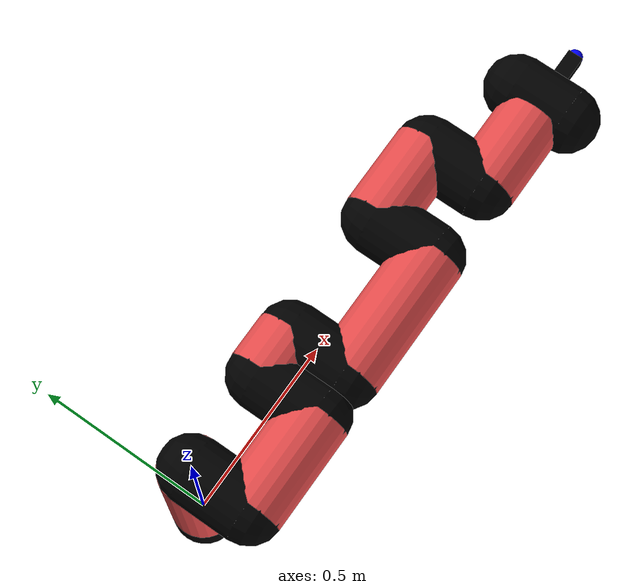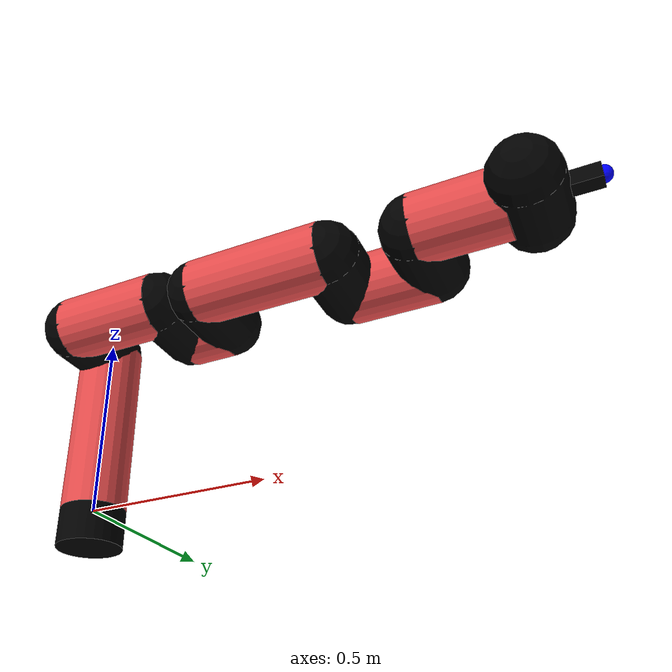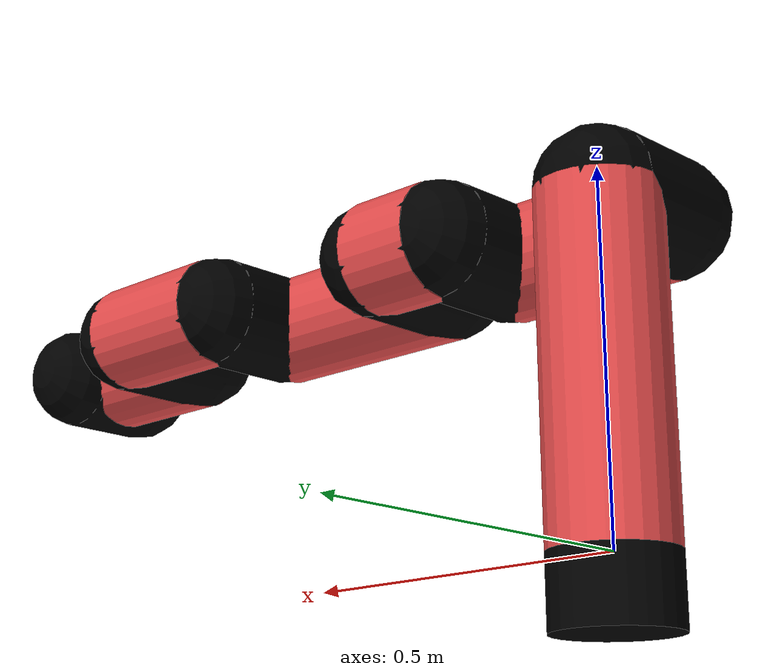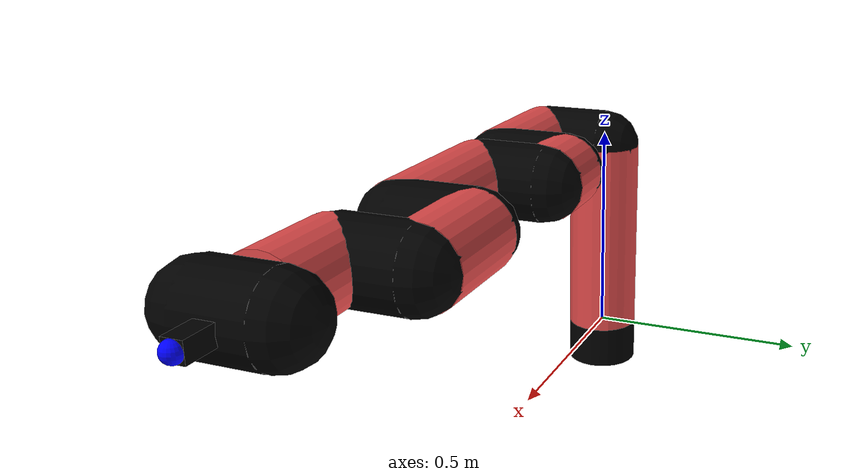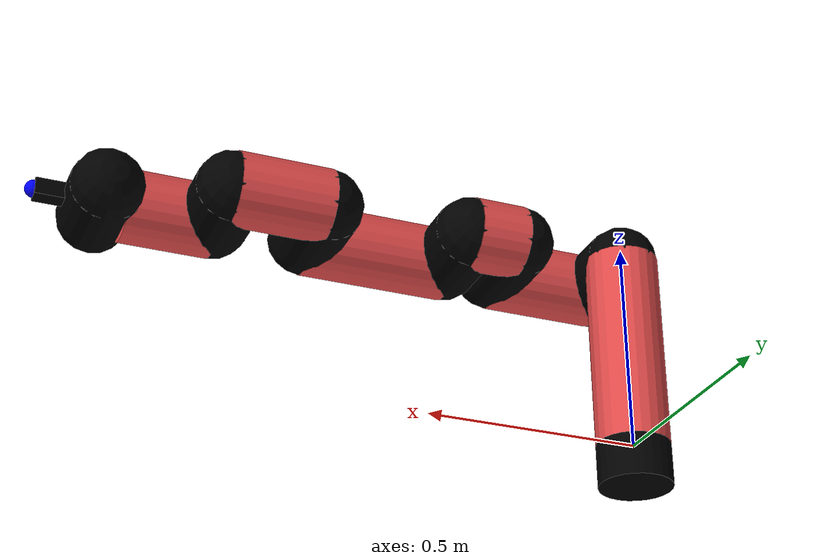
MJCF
<mujoco model="manipulator">
		<compiler angle="degree" coordinate="local" inertiafromgeom="auto" meshdir="meshes/"/>
		<option gravity="0 0 0" integrator="RK4" iterations="30" timestep="0.01"/>

		<default>
		<joint armature="1" limited="true" stiffness="10" damping="15" frictionloss="5.0"/>
		<geom conaffinity="1" condim="3" contype="1" friction=".5 .1 .1" margin="0.002"/>
		<motor ctrllimited="true"/>
		<position ctrllimited="true"/>
		</default>

		<asset>
		<texture builtin="gradient" height="100" rgb1="1.0 1.0 1.0" rgb2="1.0 1.0 1.0" type="skybox" width="100"/>
		<texture builtin="flat" height="32" name="arm_tex" rgb1="0.9 0.3 0.3" type="2d" width="32"/>
		<texture builtin="flat" height="32" name="gripper_tex" rgb1="0.0 0.0 0.0" type="cube" width="32"/>

		<material name="arm_mat" shininess="0.1" specular="0.1" texture="arm_tex"/>
		<material name="gripper_mat" shininess="1" specular="1" texture="gripper_tex"/>
		</asset>

		<worldbody>
		<light cutoff="45" diffuse=".8 .8 .8" dir="0 0.16 -1" directional="false" name="light" pos="0 -2.0 8.0" specular="0.3 0.3 0.3"/>

		<body name="base_link" pos="0 0 -0.1">
		<geom fromto="0 0 0 0 0 0.1" material="arm_mat" name="base_link" rgba="0.0 0.0 0.0 1" size="0.085" type="cylinder"/>
		</body>

		<body name="l1" pos="0 0 0">
<geom fromto="0 0 0 0 0 0.47" material="arm_mat" name="l1" rgba="0.9 0.3 0.3 1" size="0.085" type="cylinder"/>
<geom fromto="0 0 0.47 0 -0.16 0.47" material="arm_mat" name="l1_ex" rgba="0.0 0.0 0.0 1" size="0.085" type="capsule"/>
<joint axis="0 0 1" name="j1" pos="0 0 0" range="-90 90" damping="16.29" frictionloss="11.21"/>

<body name="l2" pos="0 -0.16 0.47">
<geom fromto="0 0 0 0.27 0 0" material="arm_mat" name="l2" rgba="0.9 0.3 0.3 1" size="0.085" type="cylinder"/>
<geom fromto="0.27 0 0 0.27 0.16 0" material="arm_mat" name="l2_ex" rgba="0.0 0.0 0.0 1" size="0.085" type="capsule"/>
<joint axis="0.0 1.0 0.0" name="j2" pos="0 0 0" range="-90 60" damping="22.64" frictionloss="6.98"/>

<body name="l3" pos="0.27 0.16 0">
<geom fromto="0 0 0 0.12 0 0" material="arm_mat" name="l3" rgba="0.9 0.3 0.3 1" size="0.085" type="cylinder"/>
<geom fromto="0.12 0 0 0.12 -0.16 0" material="arm_mat" name="l3_ex" rgba="0.0 0.0 0.0 1" size="0.085" type="capsule"/>
<joint axis="0.0 1.0 0.0" name="j3" pos="0 0 0" range="-30 60" damping="18.83" frictionloss="9.27"/>

<body name="l4" pos="0.12 -0.16 0">
<geom fromto="0 0 0 0.35 0 0" material="arm_mat" name="l4" rgba="0.9 0.3 0.3 1" size="0.085" type="cylinder"/>
<geom fromto="0.35 0 0 0.35 0.16 0" material="arm_mat" name="l4_ex" rgba="0.0 0.0 0.0 1" size="0.085" type="capsule"/>
<joint axis="0.0 1.0 0.0" name="j4" pos="0 0 0" range="-30 60" damping="33.8" frictionloss="14.02"/>

<body name="l5" pos="0.35 0.16 0">
<geom fromto="0 0 0 0.22 0 0" material="arm_mat" name="l5" rgba="0.9 0.3 0.3 1" size="0.085" type="cylinder"/>
<geom fromto="0.22 0 0 0.22 -0.16 0" material="arm_mat" name="l5_ex" rgba="0.0 0.0 0.0 1" size="0.085" type="capsule"/>
<joint axis="0.0 1.0 0.0" name="j5" pos="0 0 0" range="-30 60" damping="31.52" frictionloss="7.28"/>

<body name="l6" pos="0.22 -0.16 0">
<geom fromto="0 0 0 0.21 0 0" material="arm_mat" name="l6" rgba="0.9 0.3 0.3 1" size="0.085" type="cylinder"/>
<joint axis="0.0 1.0 0.0" name="j6" pos="0 0 0" range="-30 60" damping="36.61" frictionloss="13.49"/>

<body name="gripper" pos="0.21 0 0">
<geom fromto="0.05 -0.07 0 0.05 0.07 0" material="gripper_mat" name="gripper" rgba="0.0 0.0 0.0 1" size="0.085" type="capsule"/><joint axis="1 0 0" name="j7" pos="0 0 0" range="-90 90" damping="15" frictionloss="5.0"/><body name="finger" pos="0.1 0 0">
<geom fromto="0 0.0 0 0.1 0.0 0" material="gripper_mat" name="finger" rgba="0.0 0.0 0.0 1" size="0.020 0.06 0.06" type="box"/>
</body>
<site name="current" pos="0.2 0. 0.0" rgba="0. 0. 1.0 1" size="0.02" type="sphere"/>
</body>
</body>
</body>
</body>
</body>
</body>
</body>
</worldbody>
<actuator>
<motor ctrllimited="true" ctrlrange="-1.0 1.0" joint="j1" gear="71.19"/>
<motor ctrllimited="true" ctrlrange="-1.0 1.0" joint="j2" gear="103.96"/>
<motor ctrllimited="true" ctrlrange="-1.0 1.0" joint="j3" gear="34.02"/>
<motor ctrllimited="true" ctrlrange="-1.0 1.0" joint="j4" gear="51.83"/>
<motor ctrllimited="true" ctrlrange="-1.0 1.0" joint="j5" gear="88.23"/>
<motor ctrllimited="true" ctrlrange="-1.0 1.0" joint="j6" gear="109.63"/>
<motor ctrllimited="true" ctrlrange="-1.0 1.0" joint="j7" gear="80"/>
</actuator>
</mujoco>
